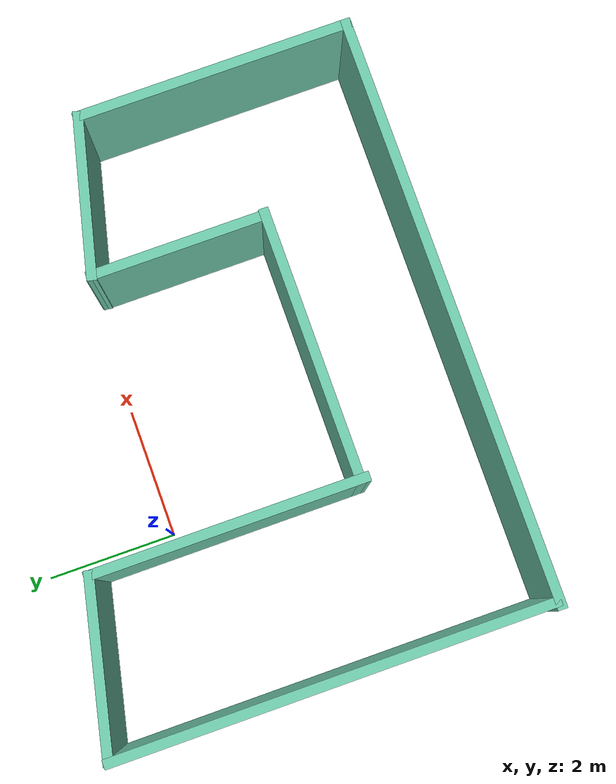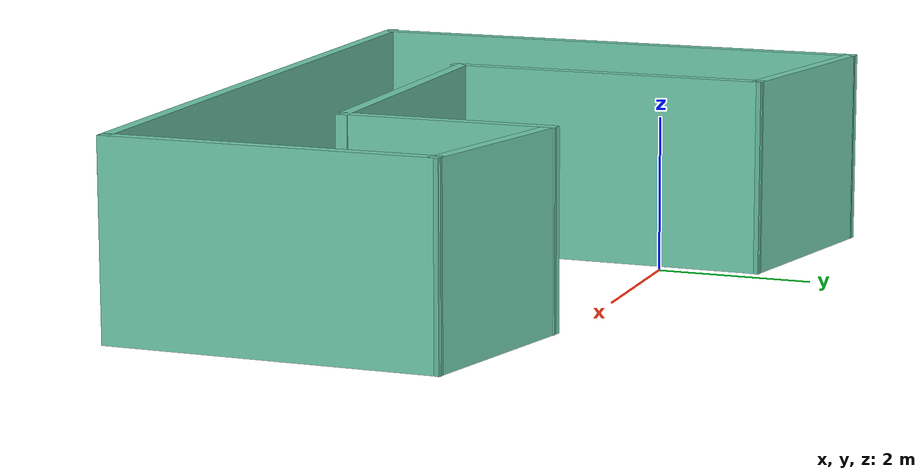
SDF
<?xml version='1.0'?>
<sdf version='1.6'>
  <model name='final_model'>
    <pose frame=''>1.57301 -1.53608 0 0 -0 0</pose>
    <link name='Wall_0'>
      <collision name='Wall_0_Collision'>
        <geometry>
          <box>
            <size>9 0.15 2.5</size>
          </box>
        </geometry>
        <pose frame=''>0 0 1.25 0 -0 0</pose>
      </collision>
      <visual name='Wall_0_Visual'>
        <pose frame=''>0 0 1.25 0 -0 0</pose>
        <geometry>
          <box>
            <size>9 0.15 2.5</size>
          </box>
        </geometry>
        <material>
          <script>
            <uri>file://media/materials/scripts/gazebo.material</uri>
            <name>Gazebo/Grey</name>
          </script>
          <ambient>0.435294 0.796078 0.67451 1</ambient>
        </material>
        <meta>
          <layer>0</layer>
        </meta>
      </visual>
      <pose frame=''>-0.008007 -3.33392 0 0 -0 0</pose>
    </link>
    <link name='Wall_1'>
      <collision name='Wall_1_Collision'>
        <geometry>
          <box>
            <size>4.25 0.15 2.5</size>
          </box>
        </geometry>
        <pose frame=''>0 0 1.25 0 -0 0</pose>
      </collision>
      <visual name='Wall_1_Visual'>
        <pose frame=''>0 0 1.25 0 -0 0</pose>
        <geometry>
          <box>
            <size>4.25 0.15 2.5</size>
          </box>
        </geometry>
        <material>
          <script>
            <uri>file://media/materials/scripts/gazebo.material</uri>
            <name>Gazebo/Grey</name>
          </script>
          <ambient>0.435294 0.796078 0.67451 1</ambient>
        </material>
        <meta>
          <layer>0</layer>
        </meta>
      </visual>
      <pose frame=''>4.41699 -1.28391 0 0 -0 1.5708</pose>
    </link>
    <link name='Wall_2'>
      <collision name='Wall_2_Collision'>
        <geometry>
          <box>
            <size>2.47709 0.15 2.5</size>
          </box>
        </geometry>
        <pose frame=''>0 0 1.25 0 -0 0</pose>
      </collision>
      <visual name='Wall_2_Visual'>
        <pose frame=''>0 0 1.25 0 -0 0</pose>
        <geometry>
          <box>
            <size>2.47709 0.15 2.5</size>
          </box>
        </geometry>
        <material>
          <script>
            <uri>file://media/materials/scripts/gazebo.material</uri>
            <name>Gazebo/Grey</name>
          </script>
          <ambient>0.435294 0.796078 0.67451 1</ambient>
        </material>
        <meta>
          <layer>0</layer>
        </meta>
      </visual>
      <pose frame=''>3.28852 1.0496 0 0 -0 2.89545</pose>
    </link>
    <link name='Wall_3'>
      <collision name='Wall_3_Collision'>
        <geometry>
          <box>
            <size>2.75 0.15 2.5</size>
          </box>
        </geometry>
        <pose frame=''>0 0 1.25 0 -0 0</pose>
      </collision>
      <visual name='Wall_3_Visual'>
        <pose frame=''>0 0 1.25 0 -0 0</pose>
        <geometry>
          <box>
            <size>2.75 0.15 2.5</size>
          </box>
        </geometry>
        <material>
          <script>
            <uri>file://media/materials/scripts/gazebo.material</uri>
            <name>Gazebo/Grey</name>
          </script>
          <ambient>0.435294 0.796078 0.67451 1</ambient>
        </material>
        <meta>
          <layer>0</layer>
        </meta>
      </visual>
      <pose frame=''>2.16005 0.033124 0 0 0 -1.5708</pose>
    </link>
    <link name='Wall_4'>
      <collision name='Wall_4_Collision'>
        <geometry>
          <box>
            <size>4.18492 0.15 2.5</size>
          </box>
        </geometry>
        <pose frame=''>0 0 1.25 0 -0 0</pose>
      </collision>
      <visual name='Wall_4_Visual'>
        <pose frame=''>0 0 1.25 0 -0 0</pose>
        <geometry>
          <box>
            <size>4.18492 0.15 2.5</size>
          </box>
        </geometry>
        <material>
          <script>
            <uri>file://media/materials/scripts/gazebo.material</uri>
            <name>Gazebo/Grey</name>
          </script>
          <ambient>0.435294 0.796078 0.67451 1</ambient>
        </material>
        <meta>
          <layer>0</layer>
        </meta>
      </visual>
      <pose frame=''>0.165455 -1.28975 0 0 -0 3.14159</pose>
    </link>
    <link name='Wall_5'>
      <collision name='Wall_5_Collision'>
        <geometry>
          <box>
            <size>4.25 0.15 2.5</size>
          </box>
        </geometry>
        <pose frame=''>0 0 1.25 0 -0 0</pose>
      </collision>
      <visual name='Wall_5_Visual'>
        <pose frame=''>0 0 1.25 0 -0 0</pose>
        <geometry>
          <box>
            <size>4.25 0.15 2.5</size>
          </box>
        </geometry>
        <material>
          <script>
            <uri>file://media/materials/scripts/gazebo.material</uri>
            <name>Gazebo/Grey</name>
          </script>
          <ambient>0.435294 0.796078 0.67451 1</ambient>
        </material>
        <meta>
          <layer>0</layer>
        </meta>
      </visual>
      <pose frame=''>-1.852 0.691643 0 0 -0 1.5708</pose>
    </link>
    <link name='Wall_6'>
      <collision name='Wall_6_Collision'>
        <geometry>
          <box>
            <size>2.72023 0.15 2.5</size>
          </box>
        </geometry>
        <pose frame=''>0 0 1.25 0 -0 0</pose>
      </collision>
      <visual name='Wall_6_Visual'>
        <pose frame=''>0 0 1.25 0 -0 0</pose>
        <geometry>
          <box>
            <size>2.72023 0.15 2.5</size>
          </box>
        </geometry>
        <material>
          <script>
            <uri>file://media/materials/scripts/gazebo.material</uri>
            <name>Gazebo/Grey</name>
          </script>
          <ambient>0.435294 0.796078 0.67451 1</ambient>
        </material>
        <meta>
          <layer>0</layer>
        </meta>
      </visual>
      <pose frame=''>-3.10428 3.03031 0 0 -0 2.91503</pose>
    </link>
    <link name='Wall_7'>
      <collision name='Wall_7_Collision'>
        <geometry>
          <box>
            <size>6.75 0.15 2.5</size>
          </box>
        </geometry>
        <pose frame=''>0 0 1.25 0 -0 0</pose>
      </collision>
      <visual name='Wall_7_Visual'>
        <pose frame=''>0 0 1.25 0 -0 0</pose>
        <geometry>
          <box>
            <size>6.75 0.15 2.5</size>
          </box>
        </geometry>
        <material>
          <script>
            <uri>file://media/materials/scripts/gazebo.material</uri>
            <name>Gazebo/Grey</name>
          </script>
          <ambient>0.435294 0.796078 0.67451 1</ambient>
        </material>
        <meta>
          <layer>0</layer>
        </meta>
      </visual>
      <pose frame=''>-4.38301 0.018985 0 0 0 -1.5708</pose>
    </link>
    <static>1</static>
  </model>
</sdf>
